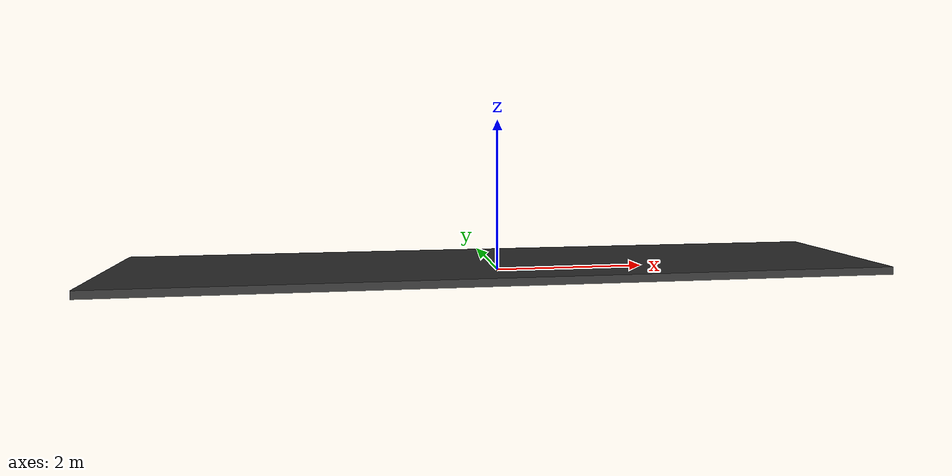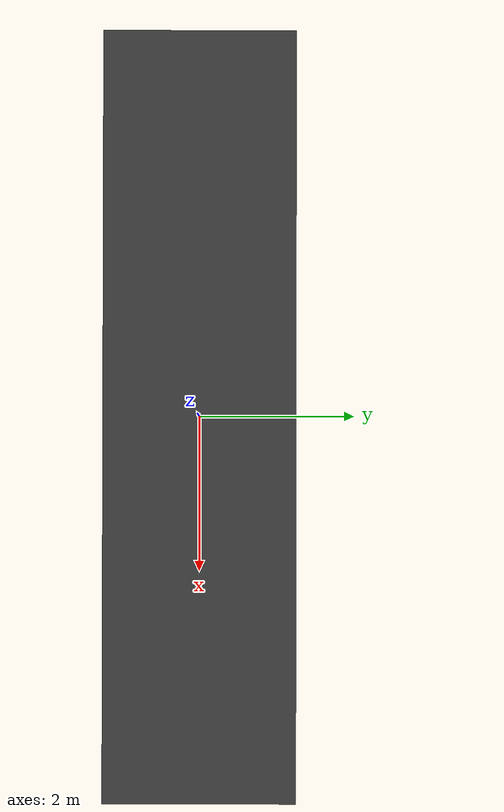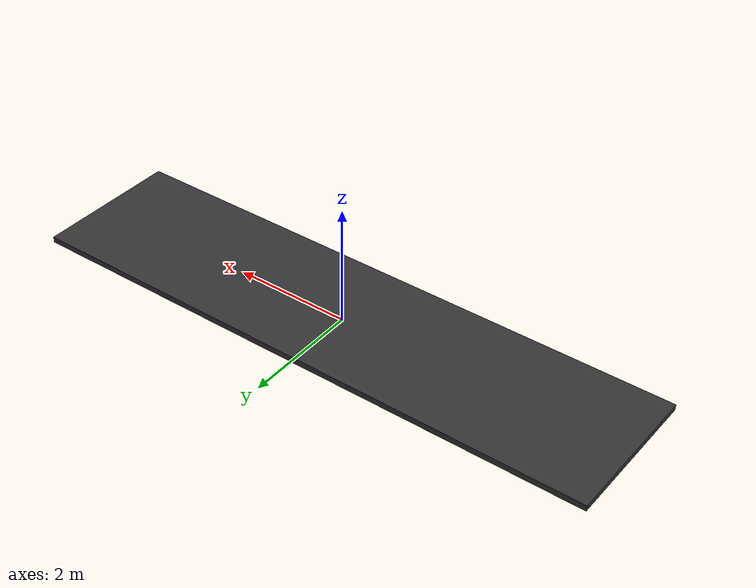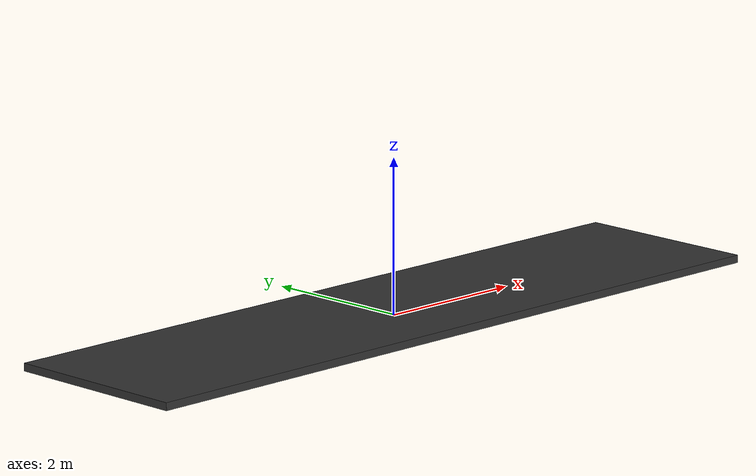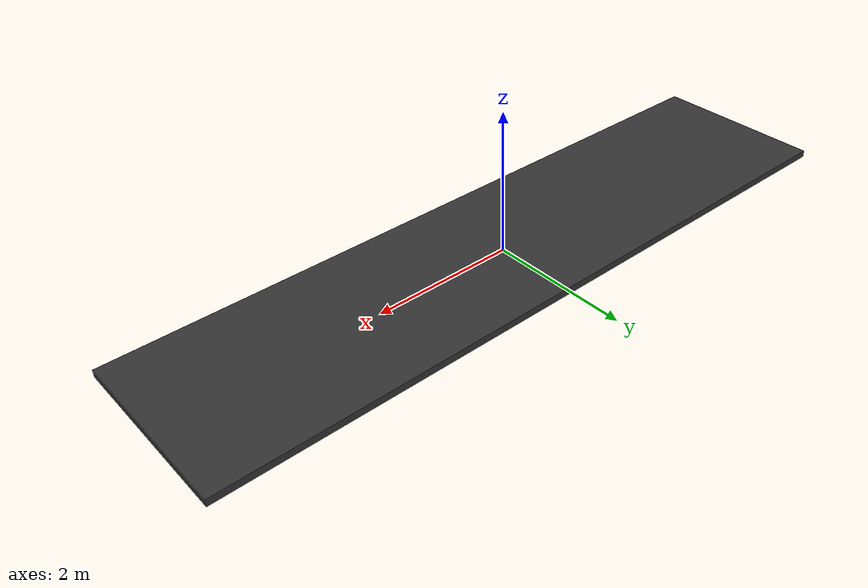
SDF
<?xml version="1.0" ?>
<sdf version="1.5">
    <model name="side walk">
        <pose>0 0 0 0 0 0</pose>
        <static>true</static>
        <link name="link">
            <visual name="visual">
                <pose>0 0 0.05 0 0 0</pose>
		<geometry>
		  <box>
		    <size>10 2.5 0.1</size>
		  </box>
		</geometry>
            <material>
                <ambient>0.2 0.2 0.2 1.0</ambient>
            </material>
            </visual>
            <collision name="collision">
                <pose>0 0 0.05 0 0 0</pose>
		<geometry>
		  <box>
		    <size>10 2.5 0.1</size>
		  </box>
		</geometry>
            </collision>
        </link>
    </model>
</sdf>
